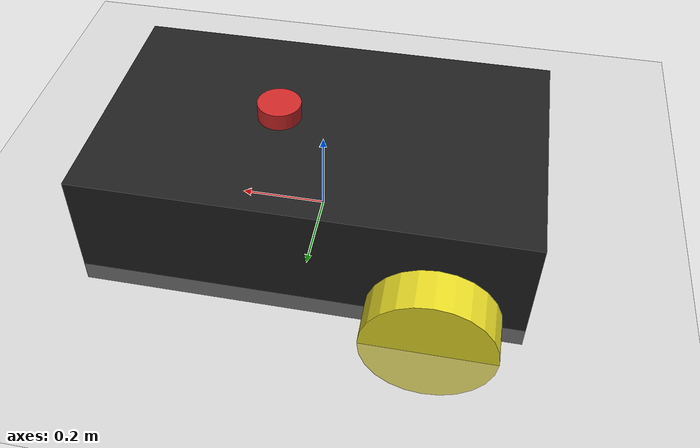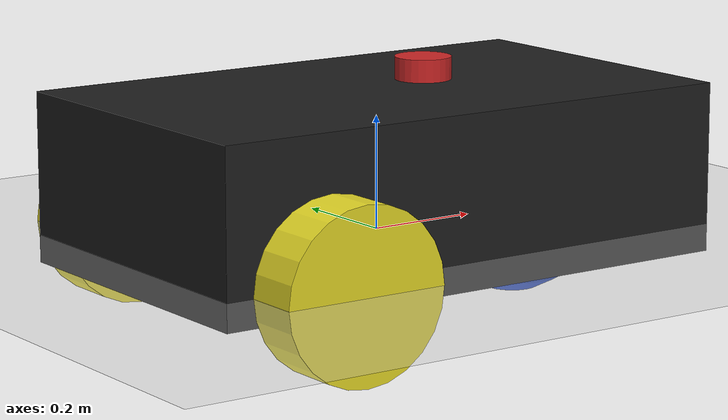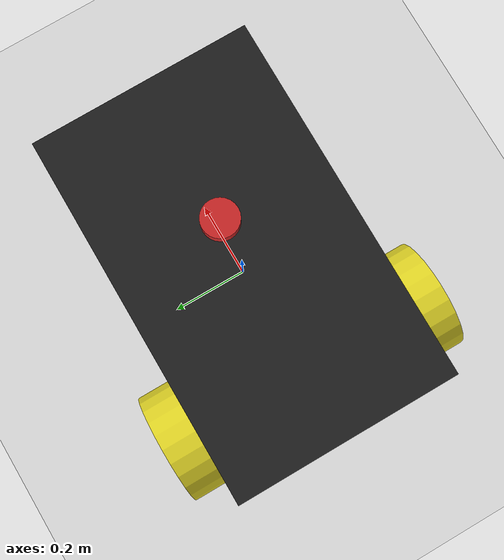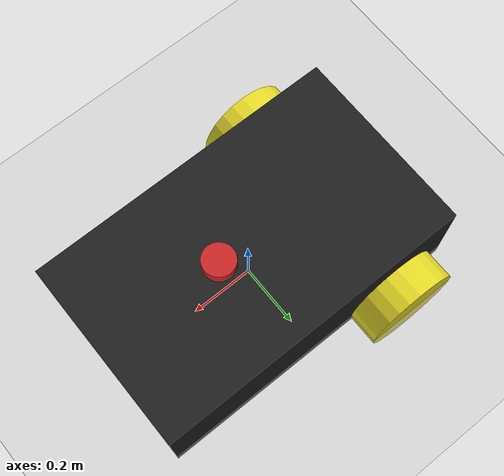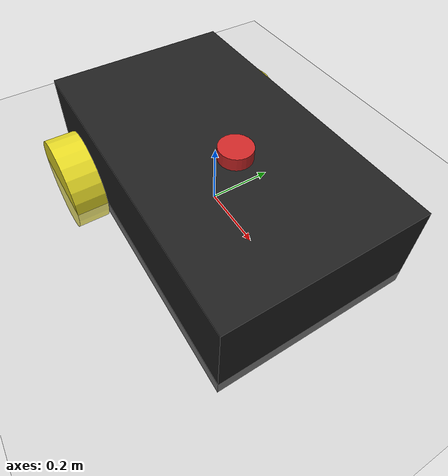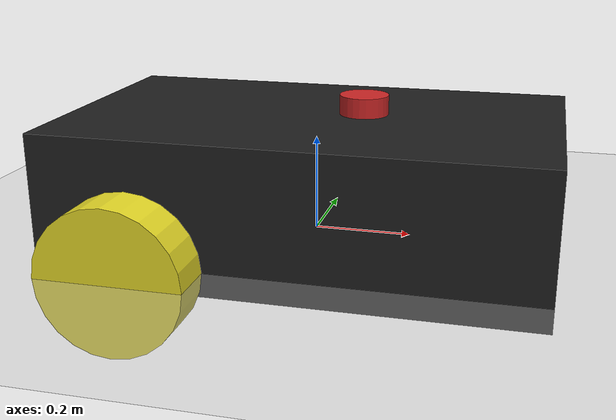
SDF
<?xml version="1.6" ?>
<sdf version="1.6">
  <world name="default">
    <!-- Basic lighting and physics -->
    <include>
      <uri>model://sun</uri>
    </include>
    <include>
      <uri>model://ground_plane</uri>
    </include>

    <!-- Include your robot model -->
<include>
  <uri>model://robot</uri>
  <pose>0 0 0.1 0 0 0</pose>
</include>

  </world>
</sdf>

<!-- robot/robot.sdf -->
<sdf version='1.7'>
  <model name='differential_drive_robot'>
    <link name='body_link'>
      <inertial>
        <pose>0.021861 0 -0.007247 0 -0 0</pose>
        <mass>526.212</mass>
        <inertia>
          <ixx>18.996</ixx>
          <ixy>0</ixy>
          <ixz>1.06423</ixz>
          <iyy>48.2095</iyy>
          <iyz>0</iyz>
          <izz>58.8265</izz>
        </inertia>
      </inertial>
      <collision name='body_link_collision'>
        <pose>0 0 0 0 -0 0</pose>
        <geometry>
          <box>
            <size>1 0.6 0.3</size>
          </box>
        </geometry>
        <surface>
          <contact>
            <ode/>
          </contact>
          <friction>
            <ode>
              <mu>0.2</mu>
              <mu2>0.2</mu2>
            </ode>
          </friction>
        </surface>
      </collision>
      <collision name='body_link_fixed_joint_lump__caster_link_collision_1'>
        <pose>0.3 0 -0.1 0 -0 0</pose>
        <geometry>
          <sphere>
            <radius>0.15</radius>
          </sphere>
        </geometry>
        <surface>
          <contact>
            <ode/>
          </contact>
          <friction>
            <ode>
              <mu>2e-06</mu>
              <mu2>2e-06</mu2>
            </ode>
          </friction>
        </surface>
      </collision>
      <collision name='body_link_fixed_joint_lump__laser_frame_collision_2'>
        <pose>0.1 0 0.175 0 -0 0</pose>
        <geometry>
          <cylinder>
            <length>0.04</length>
            <radius>0.05</radius>
          </cylinder>
        </geometry>
        <surface>
          <contact>
            <ode/>
          </contact>
          <friction>
            <ode/>
          </friction>
        </surface>
      </collision>
      <visual name='body_link_visual'>
        <pose>0 0 0 0 -0 0</pose>
        <geometry>
          <box>
            <size>1 0.6 0.3</size>
          </box>
        </geometry>
        <material>
          <script>
            <name>Gazebo/Black</name>
            <uri>file://media/materials/scripts/gazebo.material</uri>
          </script>
        </material>
      </visual>
      <visual name='body_link_fixed_joint_lump__caster_link_visual_1'>
        <pose>0.3 0 -0.1 0 -0 0</pose>
        <geometry>
          <sphere>
            <radius>0.15</radius>
          </sphere>
        </geometry>
        <material>
          <script>
            <name>Gazebo/Blue</name>
            <uri>file://media/materials/scripts/gazebo.material</uri>
          </script>
        </material>
      </visual>
      <visual name='body_link_fixed_joint_lump__laser_frame_visual_2'>
        <pose>0.1 0 0.175 0 -0 0</pose>
        <geometry>
          <cylinder>
            <length>0.04</length>
            <radius>0.05</radius>
          </cylinder>
        </geometry>
        <material>
          <script>
            <name>Gazebo/Red</name>
            <uri>file://media/materials/scripts/gazebo.material</uri>
          </script>
        </material>
      </visual>
      <sensor name='laser' type='ray'>
        <visualize>1</visualize>
        <update_rate>10</update_rate>
        <ray>
          <scan>
            <horizontal>
              <samples>360</samples>
              <min_angle>-3.14</min_angle>
              <max_angle>3.14</max_angle>
              <resolution>1</resolution>
            </horizontal>
          </scan>
          <range>
            <min>0.3</min>
            <max>12</max>
          </range>
        </ray>
        <plugin name='laser_controller' filename='libgazebo_ros_laser.so'>
          <ros>
            <argument>~/out:=/scan</argument>
          </ros>
          <output_type>sensor_msgs/LaserScan</output_type>
          <frame_name>laser_frame</frame_name>
        </plugin>
        <pose>0.1 0 0.175 0 -0 0</pose>
      </sensor>
    </link>
    <joint name='wheel1_joint' type='revolute'>
      <pose relative_to='body_link'>-0.3 -0.35 -0.1 0 -0 0</pose>
      <parent>body_link</parent>
      <child>wheel1_link</child>
      <axis>
        <xyz>0 1 0</xyz>
        <limit>
          <effort>1000</effort>
          <velocity>1000</velocity>
          <lower>-1e+16</lower>
          <upper>1e+16</upper>
        </limit>
        <dynamics>
          <damping>1</damping>
          <friction>1</friction>
          <spring_reference>0</spring_reference>
          <spring_stiffness>0</spring_stiffness>
        </dynamics>
      </axis>
    </joint>
    <link name='wheel1_link'>
      <pose relative_to='wheel1_joint'>0 0 0 0 -0 0</pose>
      <inertial>
        <pose>0 0 0 0 -0 0</pose>
        <mass>19.1559</mass>
        <inertia>
          <ixx>0.123715</ixx>
          <ixy>0</ixy>
          <ixz>0</ixz>
          <iyy>0.123715</iyy>
          <iyz>0</iyz>
          <izz>0.215503</izz>
        </inertia>
      </inertial>
      <collision name='wheel1_link_collision'>
        <pose>0 0 0 1.57079 -0 0</pose>
        <geometry>
          <cylinder>
            <length>0.1</length>
            <radius>0.15</radius>
          </cylinder>
        </geometry>
        <surface>
          <contact>
            <ode/>
          </contact>
          <friction>
            <ode>
              <mu>0.2</mu>
              <mu2>0.2</mu2>
            </ode>
          </friction>
        </surface>
      </collision>
      <visual name='wheel1_link_visual'>
        <pose>0 0 0 1.57079 -0 0</pose>
        <geometry>
          <cylinder>
            <length>0.1</length>
            <radius>0.15</radius>
          </cylinder>
        </geometry>
        <material>
          <script>
            <name>Gazebo/Yellow</name>
            <uri>file://media/materials/scripts/gazebo.material</uri>
          </script>
        </material>
      </visual>
    </link>
    <joint name='wheel2_joint' type='revolute'>
      <pose relative_to='body_link'>-0.3 0.35 -0.1 0 -0 0</pose>
      <parent>body_link</parent>
      <child>wheel2_link</child>
      <axis>
        <xyz>0 1 0</xyz>
        <limit>
          <effort>1000</effort>
          <velocity>1000</velocity>
          <lower>-1e+16</lower>
          <upper>1e+16</upper>
        </limit>
        <dynamics>
          <damping>1</damping>
          <friction>1</friction>
          <spring_reference>0</spring_reference>
          <spring_stiffness>0</spring_stiffness>
        </dynamics>
      </axis>
    </joint>
    <link name='wheel2_link'>
      <pose relative_to='wheel2_joint'>0 0 0 0 -0 0</pose>
      <inertial>
        <pose>0 0 0 0 -0 0</pose>
        <mass>19.1559</mass>
        <inertia>
          <ixx>0.123715</ixx>
          <ixy>0</ixy>
          <ixz>0</ixz>
          <iyy>0.123715</iyy>
          <iyz>0</iyz>
          <izz>0.215503</izz>
        </inertia>
      </inertial>
      <collision name='wheel2_link_collision'>
        <pose>0 0 0 1.57079 -0 0</pose>
        <geometry>
          <cylinder>
            <length>0.1</length>
            <radius>0.15</radius>
          </cylinder>
        </geometry>
        <surface>
          <contact>
            <ode/>
          </contact>
          <friction>
            <ode>
              <mu>0.2</mu>
              <mu2>0.2</mu2>
            </ode>
          </friction>
        </surface>
      </collision>
      <visual name='wheel2_link_visual'>
        <pose>0 0 0 1.57079 -0 0</pose>
        <geometry>
          <cylinder>
            <length>0.1</length>
            <radius>0.15</radius>
          </cylinder>
        </geometry>
        <material>
          <script>
            <name>Gazebo/Yellow</name>
            <uri>file://media/materials/scripts/gazebo.material</uri>
          </script>
        </material>
      </visual>
    </link>
    <static>0</static>
    <plugin name='constant_force_plugin' filename='/home/uav/hero/install/butler/share/butler/lib/libforce_plugin.so'/>
  </model>
</sdf>
